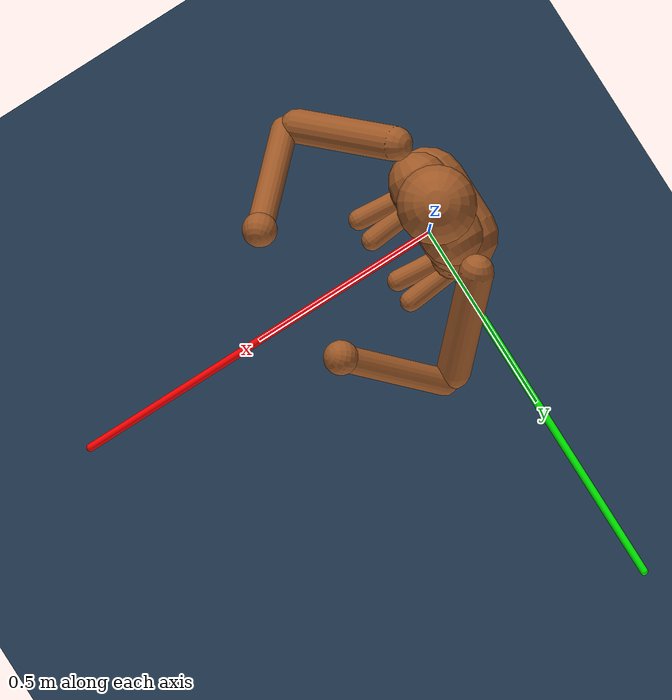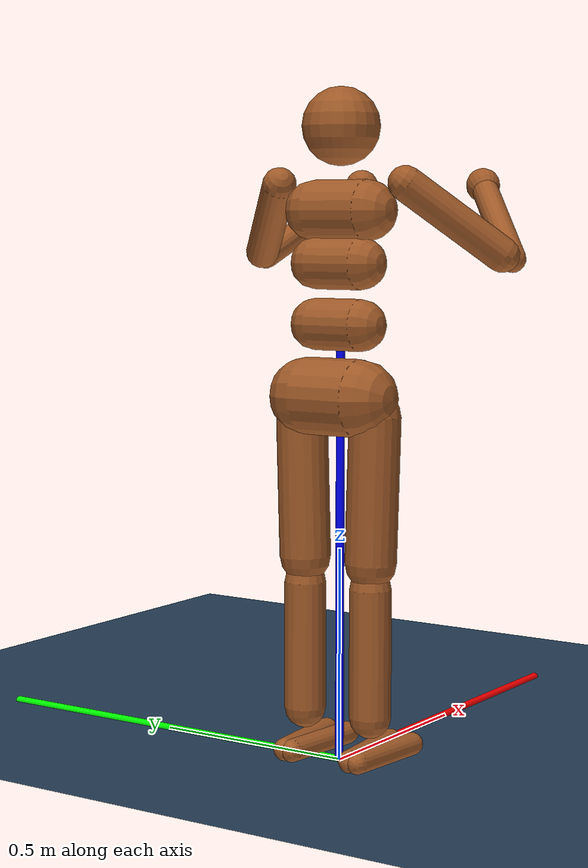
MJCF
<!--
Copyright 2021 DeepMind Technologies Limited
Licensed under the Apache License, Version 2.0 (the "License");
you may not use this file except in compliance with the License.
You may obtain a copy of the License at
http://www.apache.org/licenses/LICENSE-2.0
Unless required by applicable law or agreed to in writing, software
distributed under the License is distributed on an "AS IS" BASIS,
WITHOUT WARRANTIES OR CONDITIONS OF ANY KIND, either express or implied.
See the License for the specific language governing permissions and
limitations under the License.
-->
<mujoco model="Humanoid">
  <option timestep="0.005"/>

  <visual>
    <map force="0.1" zfar="30"/>
    <rgba haze="0.15 0.25 0.35 1"/>
    <global offwidth="2560" offheight="1440" elevation="-20" azimuth="120"/>
  </visual>

  <statistic center="0 0 0.7"/>

  <asset>
    <texture type="skybox" builtin="gradient" rgb1=".3 .5 .7" rgb2="0 0 0" width="32" height="512"/>
    <texture name="body" type="cube" builtin="flat" mark="cross" width="128" height="128" rgb1="0.8 0.6 0.4" rgb2="0.8 0.6 0.4" markrgb="1 1 1"/>
    <material name="body" texture="body" texuniform="true" rgba="0.8 0.6 .4 1"/>
    <texture name="grid" type="2d" builtin="checker" width="512" height="512" rgb1=".1 .2 .3" rgb2=".2 .3 .4"/>
    <material name="grid" texture="grid" texrepeat="1 1" texuniform="true" reflectance=".2"/>
  </asset>

  <default>
    <motor ctrlrange="-1 1" ctrllimited="true"/>
    <default class="body">

      <!-- geoms -->
      <geom type="capsule" condim="1" friction=".7" solimp=".9 .99 .003" solref=".015 1" material="body" group="1"/>
      <default class="thigh">
        <geom size=".06"/>
      </default>
      <default class="shin">
        <geom fromto="0 0 0 0 0 -.3"  size=".049"/>
      </default>
      <default class="foot">
        <geom size=".027"/>
        <default class="foot1">
          <geom fromto="-.07 -.01 0 .14 -.03 0"/>
        </default>
        <default class="foot2">
          <geom fromto="-.07 .01 0 .14  .03 0"/>
        </default>
      </default>
      <default class="arm_upper">
        <geom size=".04"/>
      </default>
      <default class="arm_lower">
        <geom size=".031"/>
      </default>
      <default class="hand">
        <geom type="sphere" size=".04"/>
      </default>

      <!-- joints -->
      <joint type="hinge" damping=".2" stiffness="1" armature=".01" limited="true" solimplimit="0 .99 .01"/>
      <default class="joint_big">
        <joint damping="5" stiffness="10"/>
        <default class="hip_x">
          <joint range="-30 10"/>
        </default>
        <default class="hip_z">
          <joint range="-60 35"/>
        </default>
        <default class="hip_y">
          <joint axis="0 1 0" range="-150 20"/>
        </default>
        <default class="joint_big_stiff">
          <joint stiffness="20"/>
        </default>
      </default>
      <default class="knee">
        <joint pos="0 0 .02" axis="0 -1 0" range="-160 2"/>
      </default>
      <default class="ankle">
        <joint range="-50 50"/>
        <default class="ankle_y">
          <joint pos="0 0 .08" axis="0 1 0" stiffness="6"/>
        </default>
        <default class="ankle_x">
          <joint pos="0 0 .04" stiffness="3"/>
        </default>
      </default>
      <default class="shoulder">
        <joint range="-85 60"/>
      </default>
      <default class="elbow">
        <joint range="-100 50" stiffness="0"/>
      </default>
    </default>
  </default>

  <worldbody>
    <geom name="floor" size="0 0 .05" type="plane" material="grid" condim="3"/>
    <light name="spotlight" mode="targetbodycom" target="torso" diffuse=".8 .8 .8" specular="0.3 0.3 0.3" pos="0 -6 4" cutoff="30"/>
    <light name="top" pos="0 0 2" mode="trackcom"/>

    <!-- XYZ Axis arrows at origin (not affected by qpos) -->
    <geom name="axis_x" type="capsule" size="0.01" fromto="0 0 0 1 0 0" rgba="1 0 0 1" contype="0" conaffinity="0"/>
    <geom name="axis_y" type="capsule" size="0.01" fromto="0 0 0 0 1 0" rgba="0 1 0 1" contype="0" conaffinity="0"/>
    <geom name="axis_z" type="capsule" size="0.01" fromto="0 0 0 0 0 1" rgba="0 0 1 1" contype="0" conaffinity="0"/>
    <body name="torso" pos="0 0 1.282" childclass="body">
      <camera name="back" pos="-3 0 1" xyaxes="0 -1 0 1 0 2" mode="trackcom"/>
      <camera name="side" pos="0 -3 1" xyaxes="1 0 0 0 1 2" mode="trackcom"/>
      <freejoint name="root"/>
      <geom name="torso" fromto="0 -.07 0 0 .07 0" size=".07"/>
      <geom name="waist_upper" fromto="-.01 -.06 -.12 -.01 .06 -.12" size=".06"/>
      <body name="head" pos="0 0 .19">
        <geom name="head" type="sphere" size=".09"/>
        <camera name="egocentric" pos=".09 0 0" xyaxes="0 -1 0 .1 0 1" fovy="80"/>
      </body>
      <body name="waist_lower" pos="-.01 0 -.26">
        <geom name="waist_lower" fromto="0 -.06 0 0 .06 0" size=".06"/>
        <joint name="abdomen_z" pos="0 0 .065" axis="0 0 1" range="-45 45" class="joint_big_stiff"/>
        <joint name="abdomen_y" pos="0 0 .065" axis="0 1 0" range="-75 30" class="joint_big"/>
        <body name="pelvis" pos="0 0 -.165">
          <joint name="abdomen_x" pos="0 0 .1" axis="1 0 0" range="-35 35" class="joint_big"/>
          <geom name="butt" fromto="-.02 -.07 0 -.02 .07 0" size=".09"/>
          <body name="thigh_right" pos="0 -.1 -.04">
            <joint name="hip_x_right" axis="1 0 0" class="hip_x"/>
            <joint name="hip_z_right" axis="0 0 1" class="hip_z"/>
            <joint name="hip_y_right" class="hip_y"/>
            <geom name="thigh_right" fromto="0 0 0 0 .01 -.34" class="thigh"/>
            <body name="shin_right" pos="0 .01 -.4">
              <joint name="knee_right" class="knee"/>
              <geom name="shin_right" class="shin"/>
              <body name="foot_right" pos="0 0 -.39">
                <joint name="ankle_y_right" class="ankle_y"/>
                <joint name="ankle_x_right" class="ankle_x" axis="1 0 .5"/>
                <geom name="foot1_right" class="foot1"/>
                <geom name="foot2_right" class="foot2"/>
              </body>
            </body>
          </body>
          <body name="thigh_left" pos="0 .1 -.04">
            <joint name="hip_x_left" axis="-1 0 0" class="hip_x"/>
            <joint name="hip_z_left" axis="0 0 -1" class="hip_z"/>
            <joint name="hip_y_left" class="hip_y"/>
            <geom name="thigh_left" fromto="0 0 0 0 -.01 -.34" class="thigh"/>
            <body name="shin_left" pos="0 -.01 -.4">
              <joint name="knee_left" class="knee"/>
              <geom name="shin_left" fromto="0 0 0 0 0 -.3" class="shin"/>
              <body name="foot_left" pos="0 0 -.39">
                <joint name="ankle_y_left" class="ankle_y"/>
                <joint name="ankle_x_left" class="ankle_x" axis="-1 0 -.5"/>
                <geom name="foot1_left" class="foot1"/>
                <geom name="foot2_left" class="foot2"/>
              </body>
            </body>
          </body>
        </body>
      </body>
      <body name="upper_arm_right" pos="0 -.17 .06">
        <joint name="shoulder1_right" axis="2 1 1"  class="shoulder"/>
        <joint name="shoulder2_right" axis="0 -1 1" class="shoulder"/>
        <geom name="upper_arm_right" fromto="0 0 0 .16 -.16 -.16" class="arm_upper"/>
        <body name="lower_arm_right" pos=".18 -.18 -.18">
          <joint name="elbow_right" axis="0 -1 1" class="elbow"/>
          <geom name="lower_arm_right" fromto=".01 .01 .01 .17 .17 .17" class="arm_lower"/>
          <body name="hand_right" pos=".18 .18 .18">
            <geom name="hand_right" zaxis="1 1 1" class="hand"/>
          </body>
        </body>
      </body>
      <body name="upper_arm_left" pos="0 .17 .06">
        <joint name="shoulder1_left" axis="-2 1 -1" class="shoulder"/>
        <joint name="shoulder2_left" axis="0 -1 -1"  class="shoulder"/>
        <geom name="upper_arm_left" fromto="0 0 0 .16 .16 -.16" class="arm_upper"/>
        <body name="lower_arm_left" pos=".18 .18 -.18">
          <joint name="elbow_left" axis="0 -1 -1" class="elbow"/>
          <geom name="lower_arm_left" fromto=".01 -.01 .01 .17 -.17 .17" class="arm_lower"/>
          <body name="hand_left" pos=".18 -.18 .18">
            <geom name="hand_left" zaxis="1 -1 1" class="hand"/>
          </body>
        </body>
      </body>
    </body>
  </worldbody>

  <contact>
    <exclude body1="waist_lower" body2="thigh_right"/>
    <exclude body1="waist_lower" body2="thigh_left"/>
  </contact>

  <tendon>
    <fixed name="hamstring_right" limited="true" range="-0.3 2">
      <joint joint="hip_y_right" coef=".5"/>
      <joint joint="knee_right" coef="-.5"/>
    </fixed>
    <fixed name="hamstring_left" limited="true" range="-0.3 2">
      <joint joint="hip_y_left" coef=".5"/>
      <joint joint="knee_left" coef="-.5"/>
    </fixed>
  </tendon>

  <actuator>
    <!-- Position control actuators with torque limits (220 Nm max, scaled by kp ratio) -->
    <!-- Torque limits: kp=225→220Nm, kp=150→147Nm, kp=75→73Nm, kp=37.5→37Nm -->
    <position name="abdomen_z"       kp="75"   joint="abdomen_z"       ctrlrange="-0.785 0.785"  forcerange="-73 73"   forcelimited="true"/>
    <position name="abdomen_y"       kp="75"   joint="abdomen_y"       ctrlrange="-1.309 0.524"  forcerange="-73 73"   forcelimited="true"/>
    <position name="abdomen_x"       kp="75"   joint="abdomen_x"       ctrlrange="-0.611 0.611"  forcerange="-73 73"   forcelimited="true"/>
    <position name="hip_x_right"     kp="75"   joint="hip_x_right"     ctrlrange="-0.524 0.175"  forcerange="-73 73"   forcelimited="true"/>
    <position name="hip_z_right"     kp="75"   joint="hip_z_right"     ctrlrange="-1.047 0.611"  forcerange="-73 73"   forcelimited="true"/>
    <position name="hip_y_right"     kp="225"  joint="hip_y_right"     ctrlrange="-2.618 0.349"  forcerange="-220 220" forcelimited="true"/>
    <position name="knee_right"      kp="150"  joint="knee_right"      ctrlrange="-2.793 0.035"  forcerange="-147 147" forcelimited="true"/>
    <position name="ankle_y_right"   kp="37.5" joint="ankle_y_right"   ctrlrange="-0.873 0.873"  forcerange="-37 37"   forcelimited="true"/>
    <position name="ankle_x_right"   kp="37.5" joint="ankle_x_right"   ctrlrange="-0.873 0.873"  forcerange="-37 37"   forcelimited="true"/>
    <position name="hip_x_left"      kp="75"   joint="hip_x_left"      ctrlrange="-0.524 0.175"  forcerange="-73 73"   forcelimited="true"/>
    <position name="hip_z_left"      kp="75"   joint="hip_z_left"      ctrlrange="-1.047 0.611"  forcerange="-73 73"   forcelimited="true"/>
    <position name="hip_y_left"      kp="225"  joint="hip_y_left"      ctrlrange="-2.618 0.349"  forcerange="-220 220" forcelimited="true"/>
    <position name="knee_left"       kp="150"  joint="knee_left"       ctrlrange="-2.793 0.035"  forcerange="-147 147" forcelimited="true"/>
    <position name="ankle_y_left"    kp="37.5" joint="ankle_y_left"    ctrlrange="-0.873 0.873"  forcerange="-37 37"   forcelimited="true"/>
    <position name="ankle_x_left"    kp="37.5" joint="ankle_x_left"    ctrlrange="-0.873 0.873"  forcerange="-37 37"   forcelimited="true"/>
    <position name="shoulder1_right" kp="37.5" joint="shoulder1_right" ctrlrange="-1.484 1.047"  forcerange="-37 37"   forcelimited="true"/>
    <position name="shoulder2_right" kp="37.5" joint="shoulder2_right" ctrlrange="-1.484 1.047"  forcerange="-37 37"   forcelimited="true"/>
    <position name="elbow_right"     kp="75"   joint="elbow_right"     ctrlrange="-1.745 0.873"  forcerange="-73 73"   forcelimited="true"/>
    <position name="shoulder1_left"  kp="37.5" joint="shoulder1_left"  ctrlrange="-1.484 1.047"  forcerange="-37 37"   forcelimited="true"/>
    <position name="shoulder2_left"  kp="37.5" joint="shoulder2_left"  ctrlrange="-1.484 1.047"  forcerange="-37 37"   forcelimited="true"/>
    <position name="elbow_left"      kp="75"   joint="elbow_left"      ctrlrange="-1.745 0.873"  forcerange="-73 73"   forcelimited="true"/>
  </actuator>

  <keyframe>
    <!--
    The values below are split into rows for readibility:
      torso position
      torso orientation
      spinal
      right leg
      left leg
      arms
    -->
    <key name="squat"
         qpos="0 0 0.596
               0.988015 0 0.154359 0
               0 0.4 0
               -0.25 -0.5 -2.5 -2.65 -0.8 0.56
               -0.25 -0.5 -2.5 -2.65 -0.8 0.56
               0 0 0 0 0 0"/>
    <key name="stand_on_left_leg"
         qpos="0 0 1.21948
               0.971588 -0.179973 0.135318 -0.0729076
               -0.0516 -0.202 0.23
               -0.24 -0.007 -0.34 -1.76 -0.466 -0.0415
               -0.08 -0.01 -0.37 -0.685 -0.35 -0.09
               0.109 -0.067 -0.7 -0.05 0.12 0.16"/>
    <key name="prone"
         qpos="0.4 0 0.0757706
               0.7325 0 0.680767 0
               0 0.0729 0
               0.0077 0.0019 -0.026 -0.351 -0.27 0
               0.0077 0.0019 -0.026 -0.351 -0.27 0
               0.56 -0.62 -1.752
               0.56 -0.62 -1.752"/>
    <key name="supine"
         qpos="-0.4 0 0.08122
               0.722788 0 -0.69107 0
               0 -0.25 0
               0.0182 0.0142 0.3 0.042 -0.44 -0.02
               0.0182 0.0142 0.3 0.042 -0.44 -0.02
               0.186 -0.73 -1.73
               0.186 -0.73 -1.73"/>
  </keyframe>
</mujoco>
